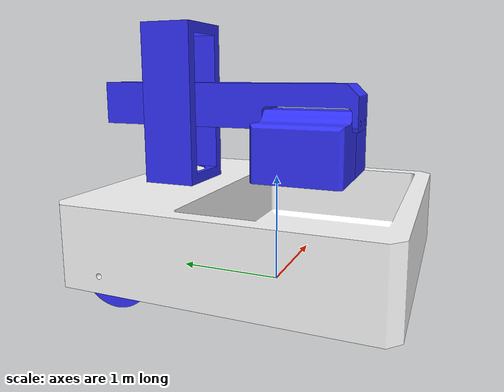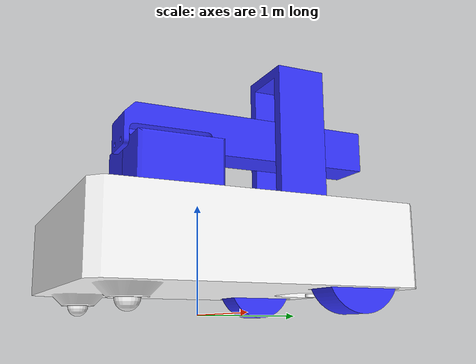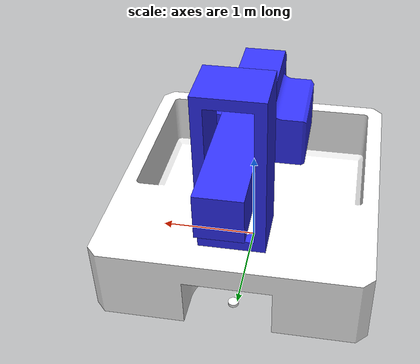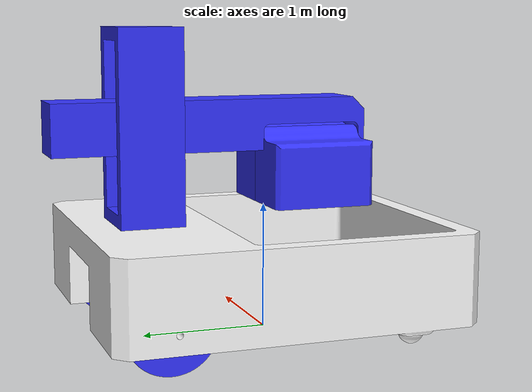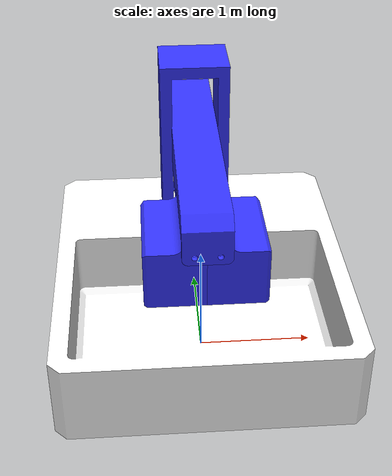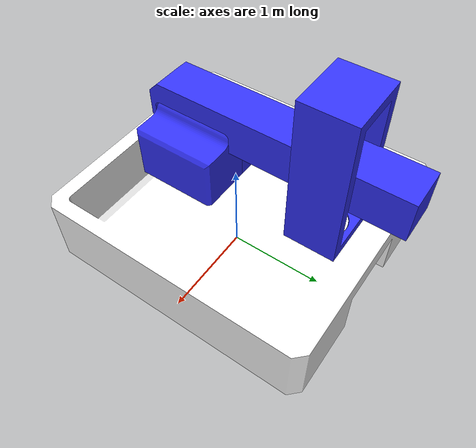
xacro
<?xml version="1.0"?>
<robot xmlns:xacro="http://www.ros.org/wiki/xacro"  name="robot">

    <xacro:include filename="robot_core.xacro" />
    <xacro:include filename="inertial_macros.xacro" />
    <xacro:include filename="gazebo_control.xacro" />
    <xacro:include filename="robot_control.urdf.xacro"/>
    <xacro:include filename="lidar.xacro" />
    <xacro:include filename="arm1_transmission.xacro"/>
    <xacro:include filename="arm2-1_transmission.xacro"/>
    <xacro:include filename="arm2-2_transmission.xacro"/>
    <xacro:include filename="arm3_transmission.xacro"/>
    <xacro:include filename="box_transmission.xacro"/>

    <ros2_control name="gripper_robot_gazebo_system" type="system">
        <hardware>
            <plugin>gazebo_ros2_control/GazeboSystem</plugin>
        </hardware>
        <xacro:arm1_transmission/>
        <xacro:arm2-1_transmission/>
        <xacro:arm2-2_transmission/>
        <xacro:arm3_transmission/>
        <xacro:box_transmission/>
    </ros2_control>
    <xacro:robot_controller/>

</robot>

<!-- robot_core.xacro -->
<robot xmlns:xacro="http://www.ros.org/wiki/xacro" >
    <xacro:include filename="inertial_macros.xacro" />

    <material name="white">
        <color rgba="1 1 1 1" />
    </material>

    <material name="orange">
        <color rgba="1 0.3 0.1 1"/>
    </material>

    <material name="blue">
        <color rgba="0.2 0.2 1 1"/>
    </material>

    <material name="black">
        <color rgba="0 0 0 1"/>
    </material>

    <material name="red">
        <color rgba="1 0 0 1"/>
    </material>

    <!-- BASE LINK -->

    <link name="base_link">

    </link>

    <joint name="chassis_joint" type="fixed">
        <parent link="base_link"/>
        <child link="chassis"/>
        <origin xyz="0 0 0.1"/>
    </joint>

    <link name="chassis">
        <visual>
            <origin xyz="-1.25 1.5 0" rpy="0 0 0"/>
            <geometry>
                <mesh filename="file://$(find articubot_one)/description/dae/mainbody.dae" scale="0.01 0.01 0.01"/>
            </geometry>
            <material name="white"/>
        </visual>
        <collision>
            <origin xyz="-1.25 1.5 0" rpy="0 0 0"/>
            <geometry>
                <mesh filename="file://$(find articubot_one)/description/dae/mainbody.dae" scale="0.01 0.01 0.01"/>
            </geometry>
        </collision>
        <xacro:inertial_box mass="50.0" x="2.5" y="2.8" z="0.8">
            <origin xyz="0 0.1 0.5" rpy="0 0 0"/>
        </xacro:inertial_box>
    </link>
    <gazebo reference="chassis">
        <material>Gazebo/white</material>
    </gazebo>

    <!-- LEFT WHEEL -->

    <joint name="left_wheel_joint" type="continuous">
        <parent link="base_link"/>
        <child link="left_wheel"/>
        <origin xyz="-0.9 1.05 0.35"/>
        <axis xyz="1 0 0"/>
    </joint>

    <link name="left_wheel">
        <visual>
            <origin xyz="0.15 -0.35 -0.35" rpy="0 -1.57 0"/>
            <geometry>
                <mesh filename="file://$(find articubot_one)/description/dae/wheel.dae" scale="0.01 0.01 0.01"/>
            </geometry>
            <material name="blue"/>
        </visual>
        <collision>
            <origin xyz="0.15 -0.35 -0.35" rpy="0 -1.57 0"/>
            <geometry>
                <mesh filename="file://$(find articubot_one)/description/dae/wheel.dae" scale="0.01 0.01 0.01"/>
            </geometry>
        </collision>
        <xacro:inertial_cylinder mass="20.0" length="0.3" radius="0.35">
            <origin xyz="0 0 0" rpy="0 -1.57 0"/>
        </xacro:inertial_cylinder>
    </link>
    <gazebo reference="left_wheel">
        <material>Gazebo/Blue</material>
        <mu1 value="1.8"/>
        <mu2 value="1.8"/>
    </gazebo>

    <!-- RIGHT WHEEL -->

    <joint name="right_wheel_joint" type="continuous">
        <parent link="base_link"/>
        <child link="right_wheel"/>
        <origin xyz="0.9 1.05 0.35"/>
        <axis xyz="1 0 0"/>
    </joint>

    <link name="right_wheel">
        <visual>
            <origin xyz="0.15 -0.35 -0.35" rpy="0 -1.57 0"/>
            <geometry>
                <mesh filename="file://$(find articubot_one)/description/dae/wheel.dae" scale="0.01 0.01 0.01"/>
            </geometry>
            <material name="blue"/>
        </visual>
        <collision>
            <origin xyz="0.15 -0.35 -0.35" rpy="0 -1.57 0"/>
            <geometry>
                <mesh filename="file://$(find articubot_one)/description/dae/wheel.dae" scale="0.01 0.01 0.01"/>
            </geometry>
        </collision>
        <xacro:inertial_cylinder mass="20.0" length="0.3" radius="0.35">
            <origin xyz="0 0 0" rpy="0 -1.57 0"/>
        </xacro:inertial_cylinder>
    </link>
    <gazebo reference="right_wheel">
        <material>Gazebo/Blue</material>
        <mu1 value="1.8"/>
        <mu2 value="1.8"/>
    </gazebo>

    <!-- CASTER WHEEL -->

    <joint name="casterL_wheel_joint" type="continuous">
        <parent link="base_link"/>
        <child link="casterL_wheel"/>
        <origin xyz="0.85 -0.9 0.1" rpy="0 0 0"/>
        <axis xyz="1 0 0"/>
    </joint>

    <link name="casterL_wheel">
        <visual>
            <geometry>
                <sphere radius="0.1" />
            </geometry>
            <material name="white"/>
        </visual>
        <collision>
            <origin xyz="0 0 0" rpy="0 0 0"/>
            <geometry>
                <sphere radius="0.1" />
            </geometry>
        </collision>
        <xacro:inertial_sphere mass="2.0" radius="0.1">
            <origin xyz="0 0 0" rpy="0 0 0"/>
        </xacro:inertial_sphere>
    </link>
    <gazebo reference="casterL_wheel">
        <material>Gazebo/Blue</material>
        <mu1 value="1.8"/>
        <mu2 value="1.8"/>
    </gazebo>

    <!-- CASTER WHEEL -->

    <joint name="casterR_wheel_joint" type="continuous">
        <parent link="base_link"/>
        <child link="casterR_wheel"/>
        <origin xyz="-0.85 -0.9 0.1" rpy="0 0 0"/>
        <axis xyz="1 0 0"/>
    </joint>

    <link name="casterR_wheel">
        <visual>
            <geometry>
                <sphere radius="0.1" />
            </geometry>
            <material name="white"/>
        </visual>
        <collision>
            <origin xyz="0 0 0" rpy="0 0 0"/>
            <geometry>
                <sphere radius="0.1" />
            </geometry>
        </collision>
        <xacro:inertial_sphere mass="2.0" radius="0.1">
            <origin xyz="0 0 0" rpy="0 0 0"/>
        </xacro:inertial_sphere>
    </link>
    <gazebo reference="casterR_wheel">
        <material>Gazebo/Blue</material>
        <mu1 value="1.8"/>
        <mu2 value="1.8"/>
    </gazebo>

    <!-- ARM 1 -->

    <joint name="arm1_joint" type="revolute">
        <parent link="base_link"/>
        <limit effort="1000.0" lower="0.0" upper="3.12" velocity="0.5"/>
        <child link="arm1"/>
        <origin xyz="-0.005 0.97 0.91"/>
        <axis xyz="0 0 1"/>
        <dynamics damping="1" friction="1"/>
    </joint>

    <link name="arm1">
        <visual>
            <origin xyz="0 0 0" rpy="0 0 0"/>
            <geometry>
                <mesh filename="file://$(find articubot_one)/description/dae/arm1.dae" scale="0.01 0.01 0.01"/>
            </geometry>
            <material name="blue"/>
        </visual>
        <collision>
            <origin xyz="0 0 0" rpy="0 0 0"/>
            <geometry>
                <mesh filename="file://$(find articubot_one)/description/dae/arm1.dae" scale="0.01 0.01 0.01"/>
            </geometry>
        </collision>
        <xacro:inertial_box mass="0.01" x="0.6" y="0.5" z="1.4">
            <origin xyz="0 0.01 0.8" rpy="0 0 0"/>
        </xacro:inertial_box>
    </link>

    <!-- box -->

    <joint name="box_joint" type="prismatic">
        <parent link="arm1"/>
        <child link="box"/>
        <origin xyz="0 0 0.25"/>
        <limit effort="1000.0" lower="0.1" upper="1" velocity="0.5"/>
        <axis xyz="0 0 1"/>
        <dynamics damping="1" friction="15"/>
    </joint>

    <link name="box">
        <visual>
            <origin xyz="0 0 0" rpy="0 0 0"/>
            <geometry>
                <box size="0.2 0.2 0.2"/>
            </geometry>
            <material name="blue"/>
        </visual>
        <collision>
            <origin xyz="0 0 0" rpy="0 0 0"/>
            <geometry>
                <box size="0.6 0.5 0.5"/>
            </geometry>
        </collision>
        <xacro:inertial_box mass="0.01" x="0.5" y="0.5" z="0.1">
            <origin xyz="0 0 0" rpy="0 0 0"/>
        </xacro:inertial_box>
    </link>

    <!-- ARM 3 -->

    <joint name="arm3_joint" type="prismatic">
        <parent link="box"/>
        <child link="arm3"/>
        <origin xyz="0 0 -0.25"/>
        <limit effort="1000.0" lower="0.2" upper="0.8" velocity="0.5"/>
        <axis xyz="0 1 0"/>
        <dynamics damping="1" friction="5"/>
    </joint>

    <link name="arm3">
        <visual>
            <origin xyz="0 0 0" rpy="0 0 0"/>
            <geometry>
                <mesh filename="file://$(find articubot_one)/description/dae/arm3.dae" scale="0.01 0.01 0.01"/>
            </geometry>
            <material name="blue"/>
        </visual>
        <collision>
            <origin xyz="0 0 0" rpy="0 0 0"/>
            <geometry>
                <mesh filename="file://$(find articubot_one)/description/dae/arm3.dae" scale="0.01 0.01 0.01"/>
            </geometry>
        </collision>
        <xacro:inertial_box mass="0.01" x="0.4" y="2.5" z="0.4">
            <origin xyz="0 -1 0.2" rpy="0 0 0"/>
        </xacro:inertial_box>
    </link>

    <!-- ARM 2.1 -->

    <joint name="arm2-1_joint" type="revolute">
        <parent link="arm3"/>
        <child link="arm2-1"/>
        <origin xyz="0.1 -1.4 0.07"/>
        <limit effort="1000.0" lower="-1" upper="0" velocity="0.5"/>
        <axis xyz="0 1 0"/>
        <dynamics damping="0" friction="0"/>
    </joint>

    <link name="arm2-1">
        <visual>
            <origin xyz="0 0 0" rpy="1.57 0 0"/>
            <geometry>
                <mesh filename="file://$(find articubot_one)/description/dae/arm2.dae" scale="0.01 0.01 0.01"/>
            </geometry>
            <material name="blue"/>
        </visual>
        <collision>
            <origin xyz="0 0 0" rpy="1.57 0 0"/>
            <geometry>
                <mesh filename="file://$(find articubot_one)/description/dae/arm2.dae" scale="0.01 0.01 0.01"/>
            </geometry>
        </collision>
        <xacro:inertial_box mass="0.01" x="0.45" y="0.81" z="0.55">
            <origin xyz="0.15 -0.4 -0.25" rpy="0 0 0"/>
        </xacro:inertial_box>
    </link>

    <!-- ARM 2.2 -->

    <joint name="arm2-2_joint" type="revolute">
        <parent link="arm3"/>
        <child link="arm2-2"/>
        <origin xyz="-0.1 -2.2 0.07"/>
        <limit effort="1000.0" lower="0" upper="1" velocity="0.5"/>
        <axis xyz="0 1 0"/>
        <dynamics damping="0" friction="0"/>
    </joint>

    <link name="arm2-2">
        <visual>
            <origin xyz="0 0 0" rpy="1.57 0 3.14"/>
            <geometry>
                <mesh filename="file://$(find articubot_one)/description/dae/arm2.dae" scale="0.01 0.01 0.01"/>
            </geometry>
            <material name="blue"/>
        </visual>
        <collision>
            <origin xyz="0 0 0" rpy="1.57 0 3.14"/>
            <geometry>
                <mesh filename="file://$(find articubot_one)/description/dae/arm2.dae" scale="0.01 0.01 0.01"/>
            </geometry>
        </collision>
        <xacro:inertial_box mass="0.01" x="0.45" y="0.81" z="0.55">
            <origin xyz="-0.15 0.4 -0.25" rpy="0 0 0"/>
        </xacro:inertial_box>
    </link>

</robot>

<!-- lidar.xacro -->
<robot xmlns:xacro="http://www.ros.org/wiki/xacro" >

    <joint name="laser_joint" type="fixed">
        <parent link="chassis"/>
        <child link="laser_frame"/>
        <origin xyz="0 1.2 0.1" rpy="0 0 0"/>
    </joint>

    <link name="laser_frame">
        <visual>
            <geometry>
                <cylinder radius="0.05" length="0.03"/>
            </geometry>
            <material name="white"/>
        </visual>
        <collision>
            <geometry>
                <cylinder radius="0.05" length="0.03"/>
            </geometry>
        </collision>
        <xacro:inertial_cylinder mass="0" length="0.03" radius="0.05">
            <origin xyz="0 0 0" rpy="0 0 0"/>
        </xacro:inertial_cylinder>
    </link>

    <gazebo reference="laser_frame">
        <material>Gazebo/White</material>

        <sensor name="laser" type="ray">
            <pose> 0 0 0 0 0 0 </pose>
            <visualize>true</visualize>
            <update_rate>10</update_rate>
            <ray>
                <scan>
                    <horizontal>
                        <samples>360</samples>
                        <min_angle>2.5</min_angle>
                        <max_angle>0.64</max_angle>
                    </horizontal>
                </scan>
                <range>
                    <min>0.3</min>
                    <max>12</max>
                </range>
            </ray>

            <plugin name="laser_controller" filename="libgazebo_ros_ray_sensor.so">
                <ros>
                    <argument>~/out:=scan</argument>
                </ros>
                <output_type>sensor_msgs/LaserScan</output_type>
                <frame_name>laser_frame</frame_name>
            </plugin>
        </sensor>
    </gazebo>

</robot>
